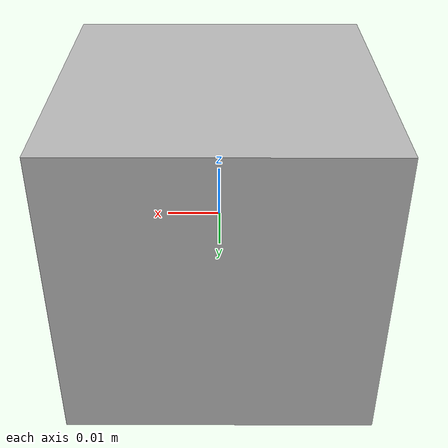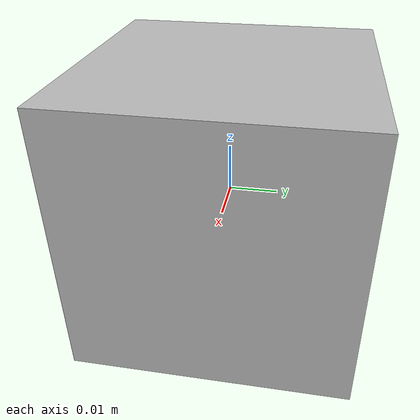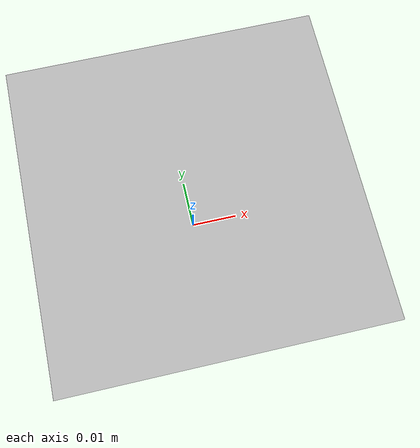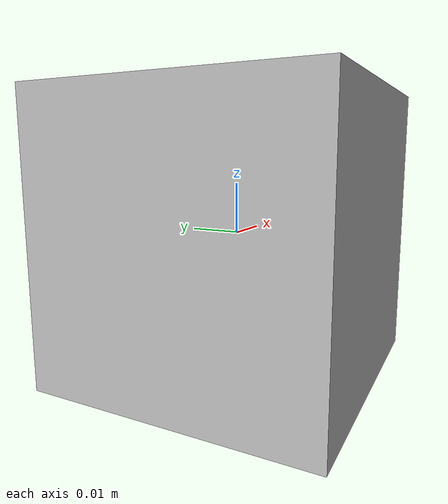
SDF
<?xml version='1.0'?>
<sdf version="1.5">
  <model name="my_model">
    <pose>0 0 0 0 0 0</pose>
    <static>false</static>
    <link name="link">
      <inertial>
	<mass>0.01</mass>
        <inertia> <!-- inertias are tricky to compute -->
	<!-- http://gazebosim.org/tutorials?tut=inertia&cat=build_robot -->
	  <ixx>0.083</ixx>       <!-- for a box: ixx = 0.083 * mass * (y*y + z*z) -->
	  <ixy>0.0</ixy>         <!-- for a box: ixy = 0 -->
	  <ixz>0.0</ixz>         <!-- for a box: ixz = 0 -->
	  <iyy>0.083</iyy>       <!-- for a box: iyy = 0.083 * mass * (x*x + z*z) -->
	  <iyz>0.0</iyz>         <!-- for a box: iyz = 0 -->
	  <izz>0.083</izz>       <!-- for a box: izz = 0.083 * mass * (x*x + y*y) -->
        </inertia>
      </inertial>
      <collision name="collision">
	<geometry>
	  <mesh>
	    <uri>model://tgrip_gazebo/worlds/model_source/aruco_cube/meshes/aruco_cube.dae</uri>
	  </mesh>
	</geometry>
      </collision>
      <visual name="visual">
	<geometry>
	  <mesh>
	    <uri>model://tgrip_gazebo/worlds/model_source/aruco_cube/meshes/aruco_cube.dae</uri>
	  </mesh>
	</geometry>
      </visual>
    </link>
  </model>
</sdf>
